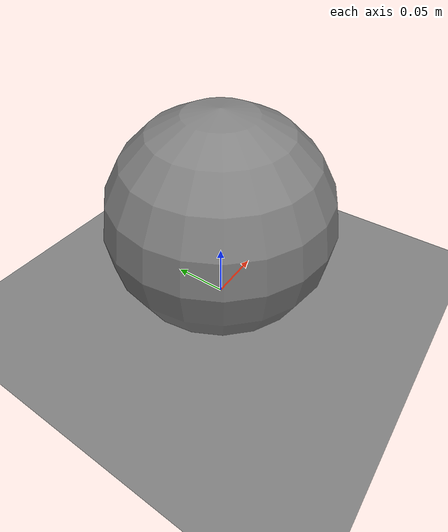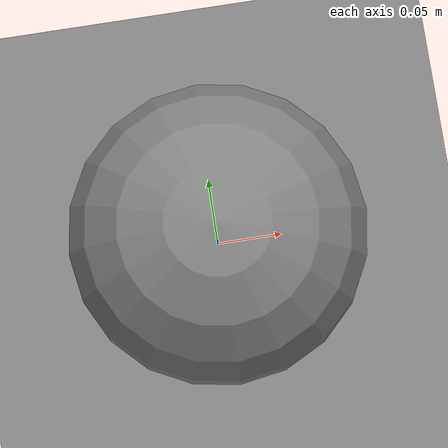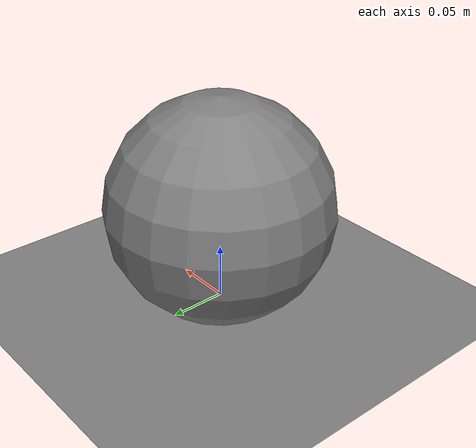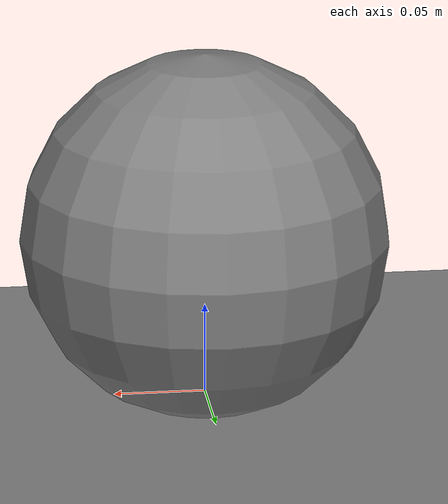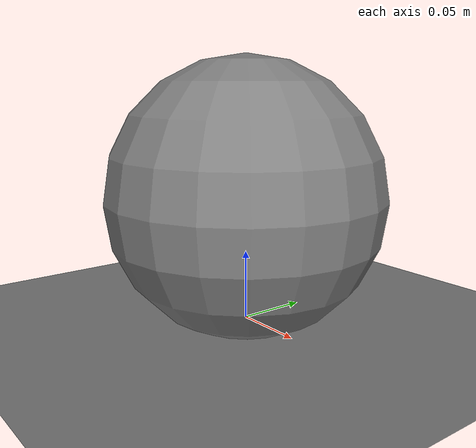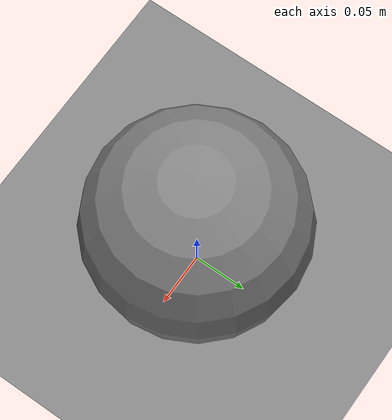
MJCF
<mujoco model="pgs_elliptic_conformance">
            <option gravity="0 0 -9.81" timestep="0.002" solver="PGS" cone="elliptic"
                    iterations="100"/>
            <worldbody>
                <geom name="floor" type="plane" size="5 5 0.1"/>
                <body name="ball" pos="0 0 0.09">
                    <joint type="free"/>
                    <geom name="sphere" type="sphere" size="0.1" mass="1.0"
                          condim="3" friction="0.5 0.5 0.005"/>
                </body>
            </worldbody>
        </mujoco>
